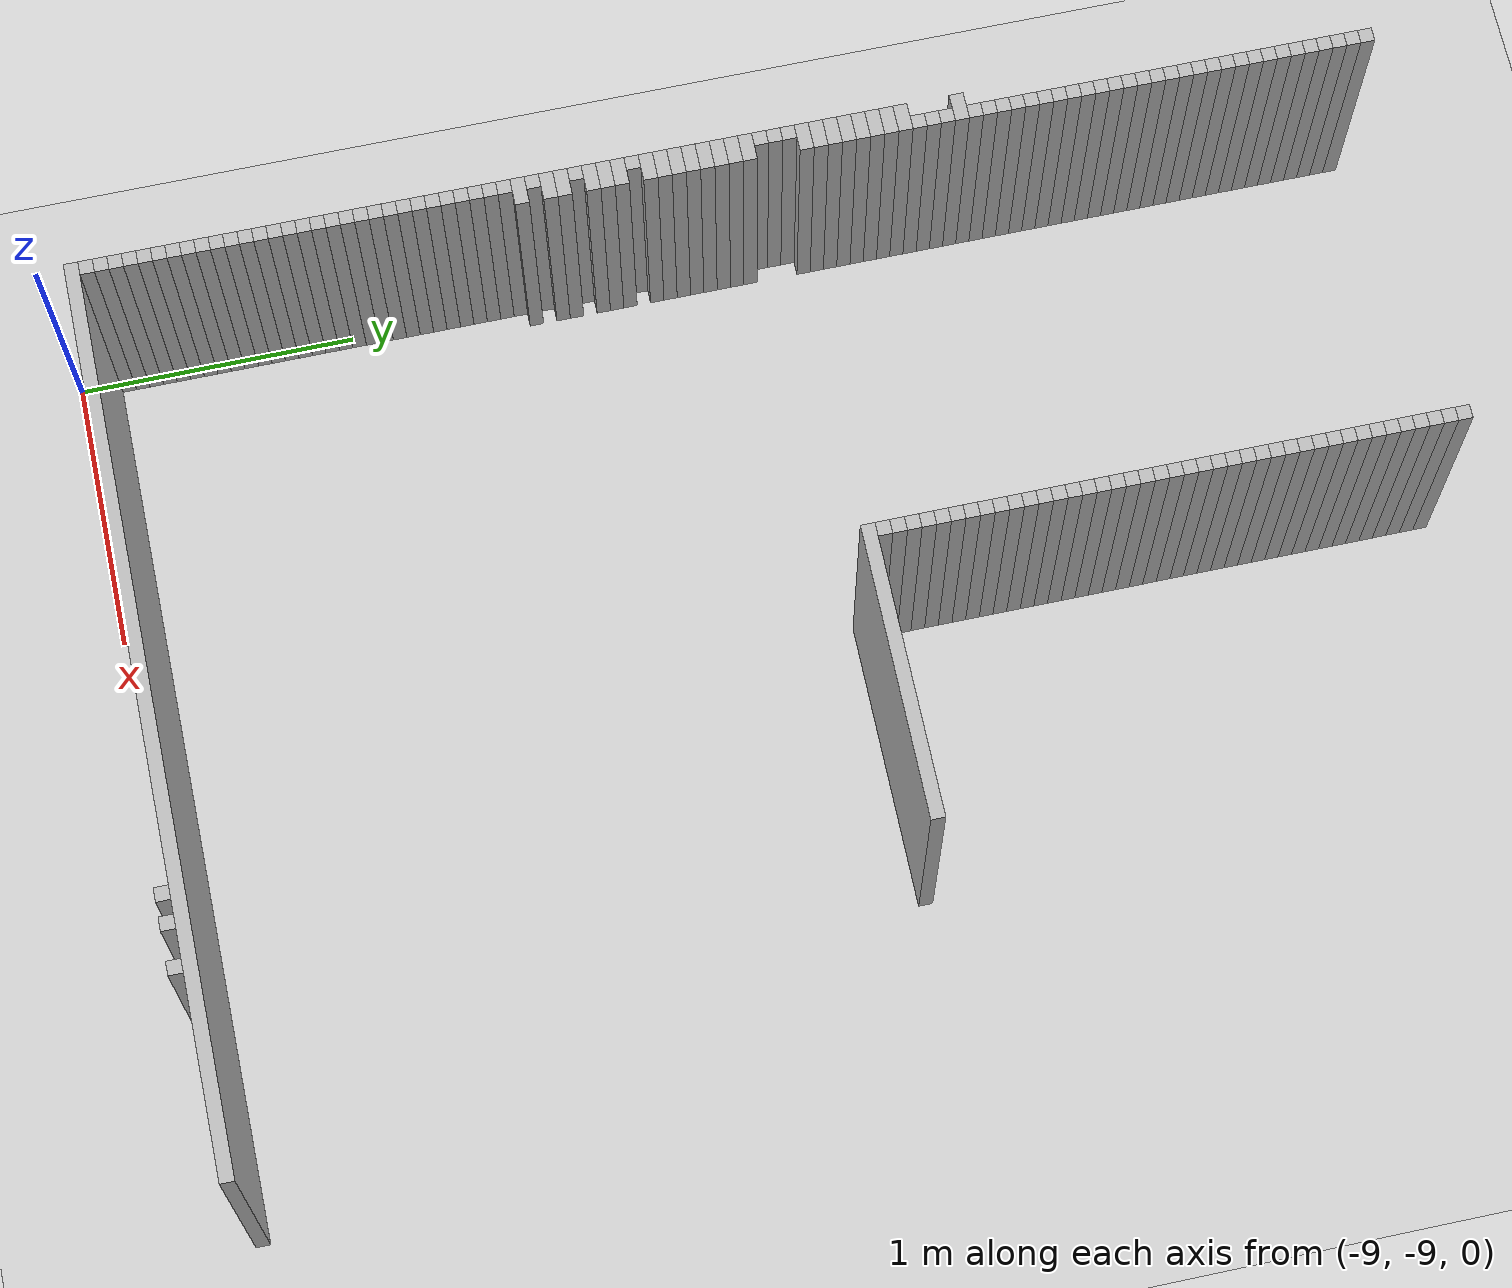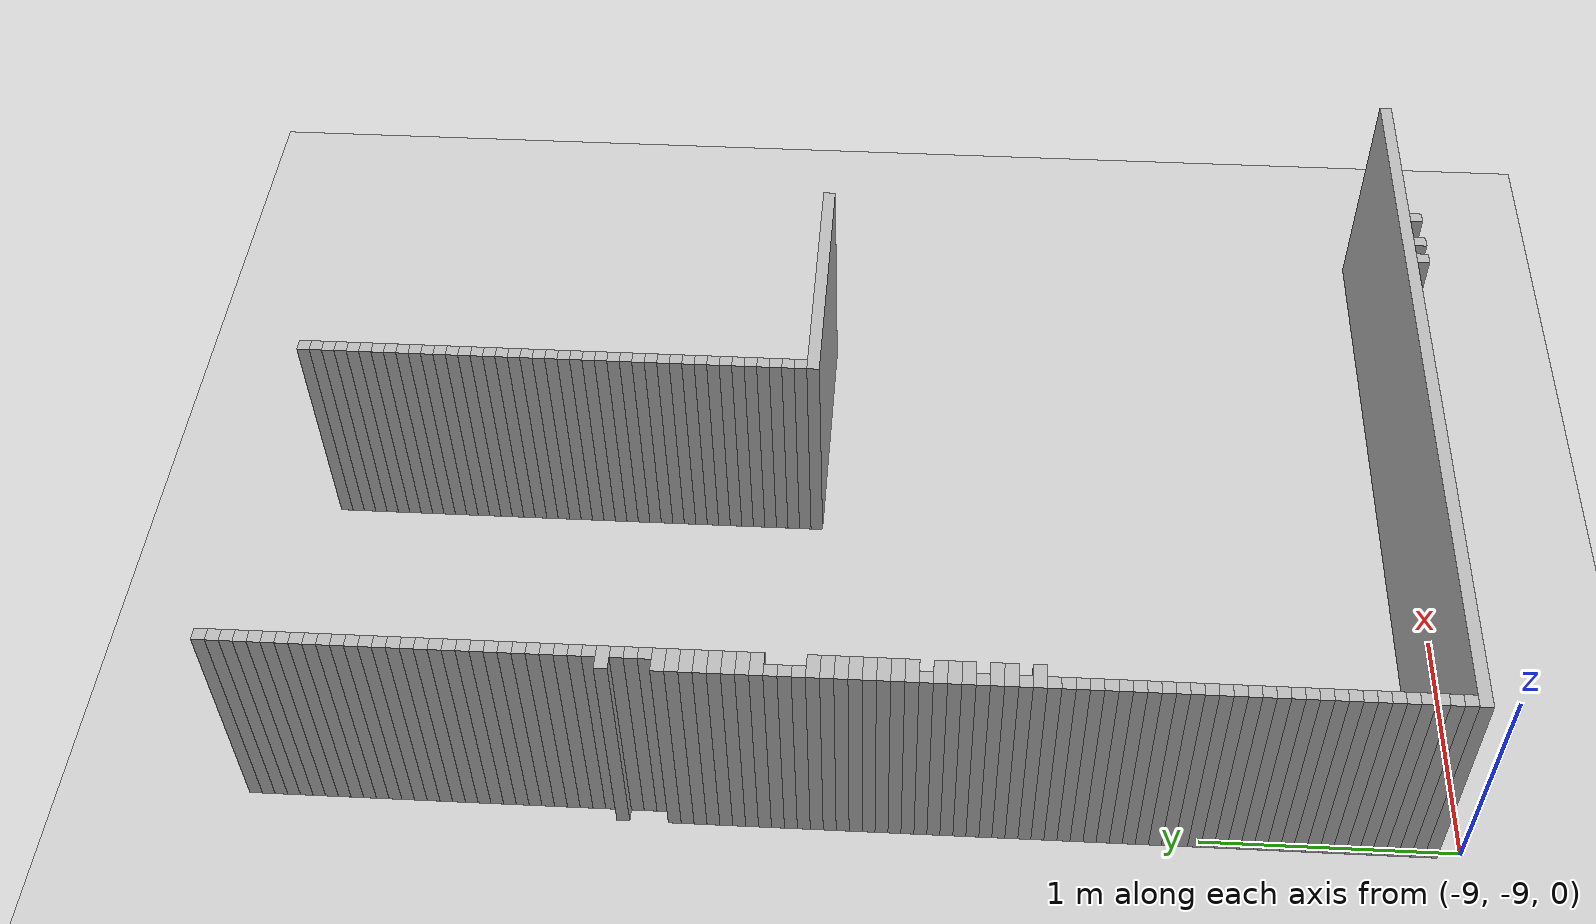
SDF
<sdf version="1.6">
 <world name="udh1_world">
  <include><uri>model://ground_plane</uri></include>
  <include><uri>model://sun</uri></include>
  <model name="wall_1954">
   <static>true</static>
   <pose>-8.945 -4.33 0.5 0 0 0</pose>
   <link name="link">
    <collision name="col"><geometry><box><size>0.05 0.05 1</size></box></geometry></collision>
    <visual name="vis"><geometry><box><size>0.05 0.05 1</size></box></geometry></visual>
   </link>
  </model>
  <model name="wall_1962">
   <static>true</static>
   <pose>-8.945 -4.380000000000001 0.5 0 0 0</pose>
   <link name="link">
    <collision name="col"><geometry><box><size>0.05 0.05 1</size></box></geometry></collision>
    <visual name="vis"><geometry><box><size>0.05 0.05 1</size></box></geometry></visual>
   </link>
  </model>
  <model name="wall_1963">
   <static>true</static>
   <pose>-7.494999999999999 -4.380000000000001 0.5 0 0 0</pose>
   <link name="link">
    <collision name="col"><geometry><box><size>0.05 0.05 1</size></box></geometry></collision>
    <visual name="vis"><geometry><box><size>0.05 0.05 1</size></box></geometry></visual>
   </link>
  </model>
  <model name="wall_1970">
   <static>true</static>
   <pose>-8.945 -4.430000000000001 0.5 0 0 0</pose>
   <link name="link">
    <collision name="col"><geometry><box><size>0.05 0.05 1</size></box></geometry></collision>
    <visual name="vis"><geometry><box><size>0.05 0.05 1</size></box></geometry></visual>
   </link>
  </model>
  <model name="wall_1971">
   <static>true</static>
   <pose>-7.494999999999999 -4.430000000000001 0.5 0 0 0</pose>
   <link name="link">
    <collision name="col"><geometry><box><size>0.05 0.05 1</size></box></geometry></collision>
    <visual name="vis"><geometry><box><size>0.05 0.05 1</size></box></geometry></visual>
   </link>
  </model>
  <model name="wall_1978">
   <static>true</static>
   <pose>-8.945 -4.48 0.5 0 0 0</pose>
   <link name="link">
    <collision name="col"><geometry><box><size>0.05 0.05 1</size></box></geometry></collision>
    <visual name="vis"><geometry><box><size>0.05 0.05 1</size></box></geometry></visual>
   </link>
  </model>
  <model name="wall_1979">
   <static>true</static>
   <pose>-7.494999999999999 -4.48 0.5 0 0 0</pose>
   <link name="link">
    <collision name="col"><geometry><box><size>0.05 0.05 1</size></box></geometry></collision>
    <visual name="vis"><geometry><box><size>0.05 0.05 1</size></box></geometry></visual>
   </link>
  </model>
  <model name="wall_1986">
   <static>true</static>
   <pose>-8.945 -4.53 0.5 0 0 0</pose>
   <link name="link">
    <collision name="col"><geometry><box><size>0.05 0.05 1</size></box></geometry></collision>
    <visual name="vis"><geometry><box><size>0.05 0.05 1</size></box></geometry></visual>
   </link>
  </model>
  <model name="wall_1987">
   <static>true</static>
   <pose>-7.494999999999999 -4.53 0.5 0 0 0</pose>
   <link name="link">
    <collision name="col"><geometry><box><size>0.05 0.05 1</size></box></geometry></collision>
    <visual name="vis"><geometry><box><size>0.05 0.05 1</size></box></geometry></visual>
   </link>
  </model>
  <model name="wall_1994">
   <static>true</static>
   <pose>-8.945 -4.580000000000001 0.5 0 0 0</pose>
   <link name="link">
    <collision name="col"><geometry><box><size>0.05 0.05 1</size></box></geometry></collision>
    <visual name="vis"><geometry><box><size>0.05 0.05 1</size></box></geometry></visual>
   </link>
  </model>
  <model name="wall_1995">
   <static>true</static>
   <pose>-7.494999999999999 -4.580000000000001 0.5 0 0 0</pose>
   <link name="link">
    <collision name="col"><geometry><box><size>0.05 0.05 1</size></box></geometry></collision>
    <visual name="vis"><geometry><box><size>0.05 0.05 1</size></box></geometry></visual>
   </link>
  </model>
  <model name="wall_2001">
   <static>true</static>
   <pose>-8.945 -4.630000000000001 0.5 0 0 0</pose>
   <link name="link">
    <collision name="col"><geometry><box><size>0.05 0.05 1</size></box></geometry></collision>
    <visual name="vis"><geometry><box><size>0.05 0.05 1</size></box></geometry></visual>
   </link>
  </model>
  <model name="wall_2002">
   <static>true</static>
   <pose>-7.494999999999999 -4.630000000000001 0.5 0 0 0</pose>
   <link name="link">
    <collision name="col"><geometry><box><size>0.05 0.05 1</size></box></geometry></collision>
    <visual name="vis"><geometry><box><size>0.05 0.05 1</size></box></geometry></visual>
   </link>
  </model>
  <model name="wall_2009">
   <static>true</static>
   <pose>-8.945 -4.680000000000001 0.5 0 0 0</pose>
   <link name="link">
    <collision name="col"><geometry><box><size>0.05 0.05 1</size></box></geometry></collision>
    <visual name="vis"><geometry><box><size>0.05 0.05 1</size></box></geometry></visual>
   </link>
  </model>
  <model name="wall_2010">
   <static>true</static>
   <pose>-7.494999999999999 -4.680000000000001 0.5 0 0 0</pose>
   <link name="link">
    <collision name="col"><geometry><box><size>0.05 0.05 1</size></box></geometry></collision>
    <visual name="vis"><geometry><box><size>0.05 0.05 1</size></box></geometry></visual>
   </link>
  </model>
  <model name="wall_2017">
   <static>true</static>
   <pose>-8.945 -4.73 0.5 0 0 0</pose>
   <link name="link">
    <collision name="col"><geometry><box><size>0.05 0.05 1</size></box></geometry></collision>
    <visual name="vis"><geometry><box><size>0.05 0.05 1</size></box></geometry></visual>
   </link>
  </model>
  <model name="wall_2018">
   <static>true</static>
   <pose>-7.494999999999999 -4.73 0.5 0 0 0</pose>
   <link name="link">
    <collision name="col"><geometry><box><size>0.05 0.05 1</size></box></geometry></collision>
    <visual name="vis"><geometry><box><size>0.05 0.05 1</size></box></geometry></visual>
   </link>
  </model>
  <model name="wall_2025">
   <static>true</static>
   <pose>-8.945 -4.78 0.5 0 0 0</pose>
   <link name="link">
    <collision name="col"><geometry><box><size>0.05 0.05 1</size></box></geometry></collision>
    <visual name="vis"><geometry><box><size>0.05 0.05 1</size></box></geometry></visual>
   </link>
  </model>
  <model name="wall_2026">
   <static>true</static>
   <pose>-7.494999999999999 -4.78 0.5 0 0 0</pose>
   <link name="link">
    <collision name="col"><geometry><box><size>0.05 0.05 1</size></box></geometry></collision>
    <visual name="vis"><geometry><box><size>0.05 0.05 1</size></box></geometry></visual>
   </link>
  </model>
  <model name="wall_2033">
   <static>true</static>
   <pose>-8.945 -4.830000000000001 0.5 0 0 0</pose>
   <link name="link">
    <collision name="col"><geometry><box><size>0.05 0.05 1</size></box></geometry></collision>
    <visual name="vis"><geometry><box><size>0.05 0.05 1</size></box></geometry></visual>
   </link>
  </model>
  <model name="wall_2034">
   <static>true</static>
   <pose>-7.494999999999999 -4.830000000000001 0.5 0 0 0</pose>
   <link name="link">
    <collision name="col"><geometry><box><size>0.05 0.05 1</size></box></geometry></collision>
    <visual name="vis"><geometry><box><size>0.05 0.05 1</size></box></geometry></visual>
   </link>
  </model>
  <model name="wall_2041">
   <static>true</static>
   <pose>-8.945 -4.880000000000001 0.5 0 0 0</pose>
   <link name="link">
    <collision name="col"><geometry><box><size>0.05 0.05 1</size></box></geometry></collision>
    <visual name="vis"><geometry><box><size>0.05 0.05 1</size></box></geometry></visual>
   </link>
  </model>
  <model name="wall_2042">
   <static>true</static>
   <pose>-7.494999999999999 -4.880000000000001 0.5 0 0 0</pose>
   <link name="link">
    <collision name="col"><geometry><box><size>0.05 0.05 1</size></box></geometry></collision>
    <visual name="vis"><geometry><box><size>0.05 0.05 1</size></box></geometry></visual>
   </link>
  </model>
  <model name="wall_2049">
   <static>true</static>
   <pose>-8.945 -4.930000000000001 0.5 0 0 0</pose>
   <link name="link">
    <collision name="col"><geometry><box><size>0.05 0.05 1</size></box></geometry></collision>
    <visual name="vis"><geometry><box><size>0.05 0.05 1</size></box></geometry></visual>
   </link>
  </model>
  <model name="wall_2050">
   <static>true</static>
   <pose>-7.494999999999999 -4.930000000000001 0.5 0 0 0</pose>
   <link name="link">
    <collision name="col"><geometry><box><size>0.05 0.05 1</size></box></geometry></collision>
    <visual name="vis"><geometry><box><size>0.05 0.05 1</size></box></geometry></visual>
   </link>
  </model>
  <model name="wall_2057">
   <static>true</static>
   <pose>-8.945 -4.98 0.5 0 0 0</pose>
   <link name="link">
    <collision name="col"><geometry><box><size>0.05 0.05 1</size></box></geometry></collision>
    <visual name="vis"><geometry><box><size>0.05 0.05 1</size></box></geometry></visual>
   </link>
  </model>
  <model name="wall_2058">
   <static>true</static>
   <pose>-7.494999999999999 -4.98 0.5 0 0 0</pose>
   <link name="link">
    <collision name="col"><geometry><box><size>0.05 0.05 1</size></box></geometry></collision>
    <visual name="vis"><geometry><box><size>0.05 0.05 1</size></box></geometry></visual>
   </link>
  </model>
  <model name="wall_2064">
   <static>true</static>
   <pose>-8.945 -5.03 0.5 0 0 0</pose>
   <link name="link">
    <collision name="col"><geometry><box><size>0.05 0.05 1</size></box></geometry></collision>
    <visual name="vis"><geometry><box><size>0.05 0.05 1</size></box></geometry></visual>
   </link>
  </model>
  <model name="wall_2065">
   <static>true</static>
   <pose>-7.494999999999999 -5.03 0.5 0 0 0</pose>
   <link name="link">
    <collision name="col"><geometry><box><size>0.05 0.05 1</size></box></geometry></collision>
    <visual name="vis"><geometry><box><size>0.05 0.05 1</size></box></geometry></visual>
   </link>
  </model>
  <model name="wall_2070">
   <static>true</static>
   <pose>-8.945 -5.080000000000001 0.5 0 0 0</pose>
   <link name="link">
    <collision name="col"><geometry><box><size>0.05 0.05 1</size></box></geometry></collision>
    <visual name="vis"><geometry><box><size>0.05 0.05 1</size></box></geometry></visual>
   </link>
  </model>
  <model name="wall_2071">
   <static>true</static>
   <pose>-7.494999999999999 -5.080000000000001 0.5 0 0 0</pose>
   <link name="link">
    <collision name="col"><geometry><box><size>0.05 0.05 1</size></box></geometry></collision>
    <visual name="vis"><geometry><box><size>0.05 0.05 1</size></box></geometry></visual>
   </link>
  </model>
  <model name="wall_2076">
   <static>true</static>
   <pose>-8.945 -5.130000000000001 0.5 0 0 0</pose>
   <link name="link">
    <collision name="col"><geometry><box><size>0.05 0.05 1</size></box></geometry></collision>
    <visual name="vis"><geometry><box><size>0.05 0.05 1</size></box></geometry></visual>
   </link>
  </model>
  <model name="wall_2077">
   <static>true</static>
   <pose>-7.494999999999999 -5.130000000000001 0.5 0 0 0</pose>
   <link name="link">
    <collision name="col"><geometry><box><size>0.05 0.05 1</size></box></geometry></collision>
    <visual name="vis"><geometry><box><size>0.05 0.05 1</size></box></geometry></visual>
   </link>
  </model>
  <model name="wall_2082">
   <static>true</static>
   <pose>-8.945 -5.180000000000001 0.5 0 0 0</pose>
   <link name="link">
    <collision name="col"><geometry><box><size>0.05 0.05 1</size></box></geometry></collision>
    <visual name="vis"><geometry><box><size>0.05 0.05 1</size></box></geometry></visual>
   </link>
  </model>
  <model name="wall_2083">
   <static>true</static>
   <pose>-7.494999999999999 -5.180000000000001 0.5 0 0 0</pose>
   <link name="link">
    <collision name="col"><geometry><box><size>0.05 0.05 1</size></box></geometry></collision>
    <visual name="vis"><geometry><box><size>0.05 0.05 1</size></box></geometry></visual>
   </link>
  </model>
  <model name="wall_2088">
   <static>true</static>
   <pose>-8.945 -5.23 0.5 0 0 0</pose>
   <link name="link">
    <collision name="col"><geometry><box><size>0.05 0.05 1</size></box></geometry></collision>
    <visual name="vis"><geometry><box><size>0.05 0.05 1</size></box></geometry></visual>
   </link>
  </model>
  <model name="wall_2089">
   <static>true</static>
   <pose>-7.494999999999999 -5.23 0.5 0 0 0</pose>
   <link name="link">
    <collision name="col"><geometry><box><size>0.05 0.05 1</size></box></geometry></collision>
    <visual name="vis"><geometry><box><size>0.05 0.05 1</size></box></geometry></visual>
   </link>
  </model>
  <model name="wall_2094">
   <static>true</static>
   <pose>-8.945 -5.280000000000001 0.5 0 0 0</pose>
   <link name="link">
    <collision name="col"><geometry><box><size>0.05 0.05 1</size></box></geometry></collision>
    <visual name="vis"><geometry><box><size>0.05 0.05 1</size></box></geometry></visual>
   </link>
  </model>
  <model name="wall_2095">
   <static>true</static>
   <pose>-7.494999999999999 -5.280000000000001 0.5 0 0 0</pose>
   <link name="link">
    <collision name="col"><geometry><box><size>0.05 0.05 1</size></box></geometry></collision>
    <visual name="vis"><geometry><box><size>0.05 0.05 1</size></box></geometry></visual>
   </link>
  </model>
  <model name="wall_2100">
   <static>true</static>
   <pose>-8.945 -5.33 0.5 0 0 0</pose>
   <link name="link">
    <collision name="col"><geometry><box><size>0.05 0.05 1</size></box></geometry></collision>
    <visual name="vis"><geometry><box><size>0.05 0.05 1</size></box></geometry></visual>
   </link>
  </model>
  <model name="wall_2101">
   <static>true</static>
   <pose>-7.494999999999999 -5.33 0.5 0 0 0</pose>
   <link name="link">
    <collision name="col"><geometry><box><size>0.05 0.05 1</size></box></geometry></collision>
    <visual name="vis"><geometry><box><size>0.05 0.05 1</size></box></geometry></visual>
   </link>
  </model>
  <model name="wall_2112">
   <static>true</static>
   <pose>-8.945 -5.380000000000001 0.5 0 0 0</pose>
   <link name="link">
    <collision name="col"><geometry><box><size>0.05 0.05 1</size></box></geometry></collision>
    <visual name="vis"><geometry><box><size>0.05 0.05 1</size></box></geometry></visual>
   </link>
  </model>
  <model name="wall_2113">
   <static>true</static>
   <pose>-7.494999999999999 -5.380000000000001 0.5 0 0 0</pose>
   <link name="link">
    <collision name="col"><geometry><box><size>0.05 0.05 1</size></box></geometry></collision>
    <visual name="vis"><geometry><box><size>0.05 0.05 1</size></box></geometry></visual>
   </link>
  </model>
  <model name="wall_2119">
   <static>true</static>
   <pose>-8.945 -5.430000000000001 0.5 0 0 0</pose>
   <link name="link">
    <collision name="col"><geometry><box><size>0.05 0.05 1</size></box></geometry></collision>
    <visual name="vis"><geometry><box><size>0.05 0.05 1</size></box></geometry></visual>
   </link>
  </model>
  <model name="wall_2120">
   <static>true</static>
   <pose>-7.494999999999999 -5.430000000000001 0.5 0 0 0</pose>
   <link name="link">
    <collision name="col"><geometry><box><size>0.05 0.05 1</size></box></geometry></collision>
    <visual name="vis"><geometry><box><size>0.05 0.05 1</size></box></geometry></visual>
   </link>
  </model>
  <model name="wall_2127">
   <static>true</static>
   <pose>-8.945 -5.48 0.5 0 0 0</pose>
   <link name="link">
    <collision name="col"><geometry><box><size>0.05 0.05 1</size></box></geometry></collision>
    <visual name="vis"><geometry><box><size>0.05 0.05 1</size></box></geometry></visual>
   </link>
  </model>
  <model name="wall_2128">
   <static>true</static>
   <pose>-7.494999999999999 -5.48 0.5 0 0 0</pose>
   <link name="link">
    <collision name="col"><geometry><box><size>0.05 0.05 1</size></box></geometry></collision>
    <visual name="vis"><geometry><box><size>0.05 0.05 1</size></box></geometry></visual>
   </link>
  </model>
  <model name="wall_2138">
   <static>true</static>
   <pose>-8.945 -5.530000000000001 0.5 0 0 0</pose>
   <link name="link">
    <collision name="col"><geometry><box><size>0.05 0.05 1</size></box></geometry></collision>
    <visual name="vis"><geometry><box><size>0.05 0.05 1</size></box></geometry></visual>
   </link>
  </model>
  <model name="wall_2139">
   <static>true</static>
   <pose>-7.494999999999999 -5.530000000000001 0.5 0 0 0</pose>
   <link name="link">
    <collision name="col"><geometry><box><size>0.05 0.05 1</size></box></geometry></collision>
    <visual name="vis"><geometry><box><size>0.05 0.05 1</size></box></geometry></visual>
   </link>
  </model>
  <model name="wall_2146">
   <static>true</static>
   <pose>-8.945 -5.58 0.5 0 0 0</pose>
   <link name="link">
    <collision name="col"><geometry><box><size>0.05 0.05 1</size></box></geometry></collision>
    <visual name="vis"><geometry><box><size>0.05 0.05 1</size></box></geometry></visual>
   </link>
  </model>
  <model name="wall_2147">
   <static>true</static>
   <pose>-7.494999999999999 -5.58 0.5 0 0 0</pose>
   <link name="link">
    <collision name="col"><geometry><box><size>0.05 0.05 1</size></box></geometry></collision>
    <visual name="vis"><geometry><box><size>0.05 0.05 1</size></box></geometry></visual>
   </link>
  </model>
  <model name="wall_2154">
   <static>true</static>
   <pose>-8.945 -5.630000000000001 0.5 0 0 0</pose>
   <link name="link">
    <collision name="col"><geometry><box><size>0.05 0.05 1</size></box></geometry></collision>
    <visual name="vis"><geometry><box><size>0.05 0.05 1</size></box></geometry></visual>
   </link>
  </model>
  <model name="wall_2155">
   <static>true</static>
   <pose>-7.494999999999999 -5.630000000000001 0.5 0 0 0</pose>
   <link name="link">
    <collision name="col"><geometry><box><size>0.05 0.05 1</size></box></geometry></collision>
    <visual name="vis"><geometry><box><size>0.05 0.05 1</size></box></geometry></visual>
   </link>
  </model>
  <model name="wall_2162">
   <static>true</static>
   <pose>-8.945 -5.680000000000001 0.5 0 0 0</pose>
   <link name="link">
    <collision name="col"><geometry><box><size>0.05 0.05 1</size></box></geometry></collision>
    <visual name="vis"><geometry><box><size>0.05 0.05 1</size></box></geometry></visual>
   </link>
  </model>
  <model name="wall_2163">
   <static>true</static>
   <pose>-7.494999999999999 -5.680000000000001 0.5 0 0 0</pose>
   <link name="link">
    <collision name="col"><geometry><box><size>0.05 0.05 1</size></box></geometry></collision>
    <visual name="vis"><geometry><box><size>0.05 0.05 1</size></box></geometry></visual>
   </link>
  </model>
  <model name="wall_2170">
   <static>true</static>
   <pose>-8.945 -5.73 0.5 0 0 0</pose>
   <link name="link">
    <collision name="col"><geometry><box><size>0.05 0.05 1</size></box></geometry></collision>
    <visual name="vis"><geometry><box><size>0.05 0.05 1</size></box></geometry></visual>
   </link>
  </model>
  <model name="wall_2171">
   <static>true</static>
   <pose>-7.494999999999999 -5.73 0.5 0 0 0</pose>
   <link name="link">
    <collision name="col"><geometry><box><size>0.05 0.05 1</size></box></geometry></collision>
    <visual name="vis"><geometry><box><size>0.05 0.05 1</size></box></geometry></visual>
   </link>
  </model>
  <model name="wall_2178">
   <static>true</static>
   <pose>-8.969999999999999 -5.780000000000001 0.5 0 0 0</pose>
   <link name="link">
    <collision name="col"><geometry><box><size>0.1 0.05 1</size></box></geometry></collision>
    <visual name="vis"><geometry><box><size>0.1 0.05 1</size></box></geometry></visual>
   </link>
  </model>
  <model name="wall_2179">
   <static>true</static>
   <pose>-7.494999999999999 -5.780000000000001 0.5 0 0 0</pose>
   <link name="link">
    <collision name="col"><geometry><box><size>0.05 0.05 1</size></box></geometry></collision>
    <visual name="vis"><geometry><box><size>0.05 0.05 1</size></box></geometry></visual>
   </link>
  </model>
  <model name="wall_2186">
   <static>true</static>
   <pose>-8.945 -5.83 0.5 0 0 0</pose>
   <link name="link">
    <collision name="col"><geometry><box><size>0.05 0.05 1</size></box></geometry></collision>
    <visual name="vis"><geometry><box><size>0.05 0.05 1</size></box></geometry></visual>
   </link>
  </model>
  <model name="wall_2187">
   <static>true</static>
   <pose>-7.494999999999999 -5.83 0.5 0 0 0</pose>
   <link name="link">
    <collision name="col"><geometry><box><size>0.05 0.05 1</size></box></geometry></collision>
    <visual name="vis"><geometry><box><size>0.05 0.05 1</size></box></geometry></visual>
   </link>
  </model>
  <model name="wall_2194">
   <static>true</static>
   <pose>-8.945 -5.880000000000001 0.5 0 0 0</pose>
   <link name="link">
    <collision name="col"><geometry><box><size>0.05 0.05 1</size></box></geometry></collision>
    <visual name="vis"><geometry><box><size>0.05 0.05 1</size></box></geometry></visual>
   </link>
  </model>
  <model name="wall_2195">
   <static>true</static>
   <pose>-7.494999999999999 -5.880000000000001 0.5 0 0 0</pose>
   <link name="link">
    <collision name="col"><geometry><box><size>0.05 0.05 1</size></box></geometry></collision>
    <visual name="vis"><geometry><box><size>0.05 0.05 1</size></box></geometry></visual>
   </link>
  </model>
  <model name="wall_2202">
   <static>true</static>
   <pose>-8.945 -5.930000000000001 0.5 0 0 0</pose>
   <link name="link">
    <collision name="col"><geometry><box><size>0.05 0.05 1</size></box></geometry></collision>
    <visual name="vis"><geometry><box><size>0.05 0.05 1</size></box></geometry></visual>
   </link>
  </model>
  <model name="wall_2203">
   <static>true</static>
   <pose>-7.494999999999999 -5.930000000000001 0.5 0 0 0</pose>
   <link name="link">
    <collision name="col"><geometry><box><size>0.05 0.05 1</size></box></geometry></collision>
    <visual name="vis"><geometry><box><size>0.05 0.05 1</size></box></geometry></visual>
   </link>
  </model>
  <model name="wall_2210">
   <static>true</static>
   <pose>-8.969999999999999 -5.98 0.5 0 0 0</pose>
   <link name="link">
    <collision name="col"><geometry><box><size>0.1 0.05 1</size></box></geometry></collision>
    <visual name="vis"><geometry><box><size>0.1 0.05 1</size></box></geometry></visual>
   </link>
  </model>
  <model name="wall_2211">
   <static>true</static>
   <pose>-7.494999999999999 -5.98 0.5 0 0 0</pose>
   <link name="link">
    <collision name="col"><geometry><box><size>0.05 0.05 1</size></box></geometry></collision>
    <visual name="vis"><geometry><box><size>0.05 0.05 1</size></box></geometry></visual>
   </link>
  </model>
  <model name="wall_2218">
   <static>true</static>
   <pose>-8.969999999999999 -6.030000000000001 0.5 0 0 0</pose>
   <link name="link">
    <collision name="col"><geometry><box><size>0.1 0.05 1</size></box></geometry></collision>
    <visual name="vis"><geometry><box><size>0.1 0.05 1</size></box></geometry></visual>
   </link>
  </model>
  <model name="wall_2219">
   <static>true</static>
   <pose>-7.494999999999999 -6.030000000000001 0.5 0 0 0</pose>
   <link name="link">
    <collision name="col"><geometry><box><size>0.05 0.05 1</size></box></geometry></collision>
    <visual name="vis"><geometry><box><size>0.05 0.05 1</size></box></geometry></visual>
   </link>
  </model>
  <model name="wall_2226">
   <static>true</static>
   <pose>-8.969999999999999 -6.08 0.5 0 0 0</pose>
   <link name="link">
    <collision name="col"><geometry><box><size>0.1 0.05 1</size></box></geometry></collision>
    <visual name="vis"><geometry><box><size>0.1 0.05 1</size></box></geometry></visual>
   </link>
  </model>
  <model name="wall_2227">
   <static>true</static>
   <pose>-7.494999999999999 -6.08 0.5 0 0 0</pose>
   <link name="link">
    <collision name="col"><geometry><box><size>0.05 0.05 1</size></box></geometry></collision>
    <visual name="vis"><geometry><box><size>0.05 0.05 1</size></box></geometry></visual>
   </link>
  </model>
  <model name="wall_2234">
   <static>true</static>
   <pose>-8.969999999999999 -6.130000000000001 0.5 0 0 0</pose>
   <link name="link">
    <collision name="col"><geometry><box><size>0.1 0.05 1</size></box></geometry></collision>
    <visual name="vis"><geometry><box><size>0.1 0.05 1</size></box></geometry></visual>
   </link>
  </model>
  <model name="wall_2235">
   <static>true</static>
   <pose>-7.494999999999999 -6.130000000000001 0.5 0 0 0</pose>
   <link name="link">
    <collision name="col"><geometry><box><size>0.05 0.05 1</size></box></geometry></collision>
    <visual name="vis"><geometry><box><size>0.05 0.05 1</size></box></geometry></visual>
   </link>
  </model>
  <model name="wall_2242">
   <static>true</static>
   <pose>-8.969999999999999 -6.180000000000001 0.5 0 0 0</pose>
   <link name="link">
    <collision name="col"><geometry><box><size>0.1 0.05 1</size></box></geometry></collision>
    <visual name="vis"><geometry><box><size>0.1 0.05 1</size></box></geometry></visual>
   </link>
  </model>
  <model name="wall_2243">
   <static>true</static>
   <pose>-7.494999999999999 -6.180000000000001 0.5 0 0 0</pose>
   <link name="link">
    <collision name="col"><geometry><box><size>0.05 0.05 1</size></box></geometry></collision>
    <visual name="vis"><geometry><box><size>0.05 0.05 1</size></box></geometry></visual>
   </link>
  </model>
  <model name="wall_2250">
   <static>true</static>
   <pose>-8.969999999999999 -6.23 0.5 0 0 0</pose>
   <link name="link">
    <collision name="col"><geometry><box><size>0.1 0.05 1</size></box></geometry></collision>
    <visual name="vis"><geometry><box><size>0.1 0.05 1</size></box></geometry></visual>
   </link>
  </model>
  <model name="wall_2251">
   <static>true</static>
   <pose>-7.494999999999999 -6.23 0.5 0 0 0</pose>
   <link name="link">
    <collision name="col"><geometry><box><size>0.05 0.05 1</size></box></geometry></collision>
    <visual name="vis"><geometry><box><size>0.05 0.05 1</size></box></geometry></visual>
   </link>
  </model>
  <model name="wall_2258">
   <static>true</static>
   <pose>-8.969999999999999 -6.280000000000001 0.5 0 0 0</pose>
   <link name="link">
    <collision name="col"><geometry><box><size>0.1 0.05 1</size></box></geometry></collision>
    <visual name="vis"><geometry><box><size>0.1 0.05 1</size></box></geometry></visual>
   </link>
  </model>
  <model name="wall_2259">
   <static>true</static>
   <pose>-7.494999999999999 -6.280000000000001 0.5 0 0 0</pose>
   <link name="link">
    <collision name="col"><geometry><box><size>0.05 0.05 1</size></box></geometry></collision>
    <visual name="vis"><geometry><box><size>0.05 0.05 1</size></box></geometry></visual>
   </link>
  </model>
  <model name="wall_2266">
   <static>true</static>
   <pose>-8.969999999999999 -6.33 0.5 0 0 0</pose>
   <link name="link">
    <collision name="col"><geometry><box><size>0.1 0.05 1</size></box></geometry></collision>
    <visual name="vis"><geometry><box><size>0.1 0.05 1</size></box></geometry></visual>
   </link>
  </model>
  <model name="wall_2267">
   <static>true</static>
   <pose>-7.494999999999999 -6.33 0.5 0 0 0</pose>
   <link name="link">
    <collision name="col"><geometry><box><size>0.05 0.05 1</size></box></geometry></collision>
    <visual name="vis"><geometry><box><size>0.05 0.05 1</size></box></geometry></visual>
   </link>
  </model>
  <model name="wall_2274">
   <static>true</static>
   <pose>-8.995 -6.380000000000001 0.5 0 0 0</pose>
   <link name="link">
    <collision name="col"><geometry><box><size>0.05 0.05 1</size></box></geometry></collision>
    <visual name="vis"><geometry><box><size>0.05 0.05 1</size></box></geometry></visual>
   </link>
  </model>
  <model name="wall_2275">
   <static>true</static>
   <pose>-7.494999999999999 -6.380000000000001 0.5 0 0 0</pose>
   <link name="link">
    <collision name="col"><geometry><box><size>0.05 0.05 1</size></box></geometry></collision>
    <visual name="vis"><geometry><box><size>0.05 0.05 1</size></box></geometry></visual>
   </link>
  </model>
  <model name="wall_2282">
   <static>true</static>
   <pose>-8.995 -6.430000000000001 0.5 0 0 0</pose>
   <link name="link">
    <collision name="col"><geometry><box><size>0.05 0.05 1</size></box></geometry></collision>
    <visual name="vis"><geometry><box><size>0.05 0.05 1</size></box></geometry></visual>
   </link>
  </model>
  <model name="wall_2283">
   <static>true</static>
   <pose>-6.994999999999999 -6.430000000000001 0.5 0 0 0</pose>
   <link name="link">
    <collision name="col"><geometry><box><size>1.05 0.05 1</size></box></geometry></collision>
    <visual name="vis"><geometry><box><size>1.05 0.05 1</size></box></geometry></visual>
   </link>
  </model>
  <model name="wall_2289">
   <static>true</static>
   <pose>-8.995 -6.48 0.5 0 0 0</pose>
   <link name="link">
    <collision name="col"><geometry><box><size>0.05 0.05 1</size></box></geometry></collision>
    <visual name="vis"><geometry><box><size>0.05 0.05 1</size></box></geometry></visual>
   </link>
  </model>
  <model name="wall_2295">
   <static>true</static>
   <pose>-8.969999999999999 -6.530000000000001 0.5 0 0 0</pose>
   <link name="link">
    <collision name="col"><geometry><box><size>0.1 0.05 1</size></box></geometry></collision>
    <visual name="vis"><geometry><box><size>0.1 0.05 1</size></box></geometry></visual>
   </link>
  </model>
  <model name="wall_2301">
   <static>true</static>
   <pose>-8.969999999999999 -6.58 0.5 0 0 0</pose>
   <link name="link">
    <collision name="col"><geometry><box><size>0.1 0.05 1</size></box></geometry></collision>
    <visual name="vis"><geometry><box><size>0.1 0.05 1</size></box></geometry></visual>
   </link>
  </model>
  <model name="wall_2306">
   <static>true</static>
   <pose>-8.969999999999999 -6.630000000000001 0.5 0 0 0</pose>
   <link name="link">
    <collision name="col"><geometry><box><size>0.1 0.05 1</size></box></geometry></collision>
    <visual name="vis"><geometry><box><size>0.1 0.05 1</size></box></geometry></visual>
   </link>
  </model>
  <model name="wall_2312">
   <static>true</static>
   <pose>-8.969999999999999 -6.680000000000001 0.5 0 0 0</pose>
   <link name="link">
    <collision name="col"><geometry><box><size>0.1 0.05 1</size></box></geometry></collision>
    <visual name="vis"><geometry><box><size>0.1 0.05 1</size></box></geometry></visual>
   </link>
  </model>
  <model name="wall_2316">
   <static>true</static>
   <pose>-8.969999999999999 -6.73 0.5 0 0 0</pose>
   <link name="link">
    <collision name="col"><geometry><box><size>0.1 0.05 1</size></box></geometry></collision>
    <visual name="vis"><geometry><box><size>0.1 0.05 1</size></box></geometry></visual>
   </link>
  </model>
  <model name="wall_2320">
   <static>true</static>
   <pose>-8.969999999999999 -6.780000000000001 0.5 0 0 0</pose>
   <link name="link">
    <collision name="col"><geometry><box><size>0.1 0.05 1</size></box></geometry></collision>
    <visual name="vis"><geometry><box><size>0.1 0.05 1</size></box></geometry></visual>
   </link>
  </model>
  <model name="wall_2324">
   <static>true</static>
   <pose>-8.969999999999999 -6.83 0.5 0 0 0</pose>
   <link name="link">
    <collision name="col"><geometry><box><size>0.1 0.05 1</size></box></geometry></collision>
    <visual name="vis"><geometry><box><size>0.1 0.05 1</size></box></geometry></visual>
   </link>
  </model>
  <model name="wall_2328">
   <static>true</static>
   <pose>-8.969999999999999 -6.880000000000001 0.5 0 0 0</pose>
   <link name="link">
    <collision name="col"><geometry><box><size>0.1 0.05 1</size></box></geometry></collision>
    <visual name="vis"><geometry><box><size>0.1 0.05 1</size></box></geometry></visual>
   </link>
  </model>
  <model name="wall_2334">
   <static>true</static>
   <pose>-8.995 -6.930000000000001 0.5 0 0 0</pose>
   <link name="link">
    <collision name="col"><geometry><box><size>0.05 0.05 1</size></box></geometry></collision>
    <visual name="vis"><geometry><box><size>0.05 0.05 1</size></box></geometry></visual>
   </link>
  </model>
  <model name="wall_2339">
   <static>true</static>
   <pose>-8.969999999999999 -6.98 0.5 0 0 0</pose>
   <link name="link">
    <collision name="col"><geometry><box><size>0.1 0.05 1</size></box></geometry></collision>
    <visual name="vis"><geometry><box><size>0.1 0.05 1</size></box></geometry></visual>
   </link>
  </model>
  <model name="wall_2345">
   <static>true</static>
   <pose>-8.969999999999999 -7.030000000000001 0.5 0 0 0</pose>
   <link name="link">
    <collision name="col"><geometry><box><size>0.1 0.05 1</size></box></geometry></collision>
    <visual name="vis"><geometry><box><size>0.1 0.05 1</size></box></geometry></visual>
   </link>
  </model>
  <model name="wall_2351">
   <static>true</static>
   <pose>-8.969999999999999 -7.08 0.5 0 0 0</pose>
   <link name="link">
    <collision name="col"><geometry><box><size>0.1 0.05 1</size></box></geometry></collision>
    <visual name="vis"><geometry><box><size>0.1 0.05 1</size></box></geometry></visual>
   </link>
  </model>
  <model name="wall_2357">
   <static>true</static>
   <pose>-8.995 -7.130000000000001 0.5 0 0 0</pose>
   <link name="link">
    <collision name="col"><geometry><box><size>0.05 0.05 1</size></box></geometry></collision>
    <visual name="vis"><geometry><box><size>0.05 0.05 1</size></box></geometry></visual>
   </link>
  </model>
  <model name="wall_2363">
   <static>true</static>
   <pose>-8.969999999999999 -7.180000000000001 0.5 0 0 0</pose>
   <link name="link">
    <collision name="col"><geometry><box><size>0.1 0.05 1</size></box></geometry></collision>
    <visual name="vis"><geometry><box><size>0.1 0.05 1</size></box></geometry></visual>
   </link>
  </model>
  <model name="wall_2369">
   <static>true</static>
   <pose>-8.969999999999999 -7.23 0.5 0 0 0</pose>
   <link name="link">
    <collision name="col"><geometry><box><size>0.1 0.05 1</size></box></geometry></collision>
    <visual name="vis"><geometry><box><size>0.1 0.05 1</size></box></geometry></visual>
   </link>
  </model>
  <model name="wall_2375">
   <static>true</static>
   <pose>-8.995 -7.280000000000001 0.5 0 0 0</pose>
   <link name="link">
    <collision name="col"><geometry><box><size>0.05 0.05 1</size></box></geometry></collision>
    <visual name="vis"><geometry><box><size>0.05 0.05 1</size></box></geometry></visual>
   </link>
  </model>
  <model name="wall_2381">
   <static>true</static>
   <pose>-8.969999999999999 -7.330000000000001 0.5 0 0 0</pose>
   <link name="link">
    <collision name="col"><geometry><box><size>0.1 0.05 1</size></box></geometry></collision>
    <visual name="vis"><geometry><box><size>0.1 0.05 1</size></box></geometry></visual>
   </link>
  </model>
  <model name="wall_2387">
   <static>true</static>
   <pose>-8.995 -7.380000000000001 0.5 0 0 0</pose>
   <link name="link">
    <collision name="col"><geometry><box><size>0.05 0.05 1</size></box></geometry></collision>
    <visual name="vis"><geometry><box><size>0.05 0.05 1</size></box></geometry></visual>
   </link>
  </model>
  <model name="wall_2393">
   <static>true</static>
   <pose>-8.995 -7.430000000000001 0.5 0 0 0</pose>
   <link name="link">
    <collision name="col"><geometry><box><size>0.05 0.05 1</size></box></geometry></collision>
    <visual name="vis"><geometry><box><size>0.05 0.05 1</size></box></geometry></visual>
   </link>
  </model>
  <model name="wall_2399">
   <static>true</static>
   <pose>-8.995 -7.48 0.5 0 0 0</pose>
   <link name="link">
    <collision name="col"><geometry><box><size>0.05 0.05 1</size></box></geometry></collision>
    <visual name="vis"><geometry><box><size>0.05 0.05 1</size></box></geometry></visual>
   </link>
  </model>
  <model name="wall_2405">
   <static>true</static>
   <pose>-8.995 -7.530000000000001 0.5 0 0 0</pose>
   <link name="link">
    <collision name="col"><geometry><box><size>0.05 0.05 1</size></box></geometry></collision>
    <visual name="vis"><geometry><box><size>0.05 0.05 1</size></box></geometry></visual>
   </link>
  </model>
  <model name="wall_2411">
   <static>true</static>
   <pose>-8.995 -7.580000000000001 0.5 0 0 0</pose>
   <link name="link">
    <collision name="col"><geometry><box><size>0.05 0.05 1</size></box></geometry></collision>
    <visual name="vis"><geometry><box><size>0.05 0.05 1</size></box></geometry></visual>
   </link>
  </model>
  <model name="wall_2417">
   <static>true</static>
   <pose>-8.995 -7.630000000000001 0.5 0 0 0</pose>
   <link name="link">
    <collision name="col"><geometry><box><size>0.05 0.05 1</size></box></geometry></collision>
    <visual name="vis"><geometry><box><size>0.05 0.05 1</size></box></geometry></visual>
   </link>
  </model>
  <model name="wall_2423">
   <static>true</static>
   <pose>-8.995 -7.680000000000001 0.5 0 0 0</pose>
   <link name="link">
    <collision name="col"><geometry><box><size>0.05 0.05 1</size></box></geometry></collision>
    <visual name="vis"><geometry><box><size>0.05 0.05 1</size></box></geometry></visual>
   </link>
  </model>
  <model name="wall_2429">
   <static>true</static>
   <pose>-8.995 -7.73 0.5 0 0 0</pose>
   <link name="link">
    <collision name="col"><geometry><box><size>0.05 0.05 1</size></box></geometry></collision>
    <visual name="vis"><geometry><box><size>0.05 0.05 1</size></box></geometry></visual>
   </link>
  </model>
  <model name="wall_2435">
   <static>true</static>
   <pose>-8.995 -7.780000000000001 0.5 0 0 0</pose>
   <link name="link">
    <collision name="col"><geometry><box><size>0.05 0.05 1</size></box></geometry></collision>
    <visual name="vis"><geometry><box><size>0.05 0.05 1</size></box></geometry></visual>
   </link>
  </model>
  <model name="wall_2441">
   <static>true</static>
   <pose>-8.995 -7.830000000000001 0.5 0 0 0</pose>
   <link name="link">
    <collision name="col"><geometry><box><size>0.05 0.05 1</size></box></geometry></collision>
    <visual name="vis"><geometry><box><size>0.05 0.05 1</size></box></geometry></visual>
   </link>
  </model>
  <model name="wall_2447">
   <static>true</static>
   <pose>-8.995 -7.880000000000001 0.5 0 0 0</pose>
   <link name="link">
    <collision name="col"><geometry><box><size>0.05 0.05 1</size></box></geometry></collision>
    <visual name="vis"><geometry><box><size>0.05 0.05 1</size></box></geometry></visual>
   </link>
  </model>
  <model name="wall_2453">
   <static>true</static>
   <pose>-8.995 -7.930000000000001 0.5 0 0 0</pose>
   <link name="link">
    <collision name="col"><geometry><box><size>0.05 0.05 1</size></box></geometry></collision>
    <visual name="vis"><geometry><box><size>0.05 0.05 1</size></box></geometry></visual>
   </link>
  </model>
  <model name="wall_2458">
   <static>true</static>
   <pose>-8.995 -7.98 0.5 0 0 0</pose>
   <link name="link">
    <collision name="col"><geometry><box><size>0.05 0.05 1</size></box></geometry></collision>
    <visual name="vis"><geometry><box><size>0.05 0.05 1</size></box></geometry></visual>
   </link>
  </model>
  <model name="wall_2463">
   <static>true</static>
   <pose>-8.995 -8.030000000000001 0.5 0 0 0</pose>
   <link name="link">
    <collision name="col"><geometry><box><size>0.05 0.05 1</size></box></geometry></collision>
    <visual name="vis"><geometry><box><size>0.05 0.05 1</size></box></geometry></visual>
   </link>
  </model>
  <model name="wall_2467">
   <static>true</static>
   <pose>-8.995 -8.08 0.5 0 0 0</pose>
   <link name="link">
    <collision name="col"><geometry><box><size>0.05 0.05 1</size></box></geometry></collision>
    <visual name="vis"><geometry><box><size>0.05 0.05 1</size></box></geometry></visual>
   </link>
  </model>
  <model name="wall_2471">
   <static>true</static>
   <pose>-8.995 -8.13 0.5 0 0 0</pose>
   <link name="link">
    <collision name="col"><geometry><box><size>0.05 0.05 1</size></box></geometry></collision>
    <visual name="vis"><geometry><box><size>0.05 0.05 1</size></box></geometry></visual>
   </link>
  </model>
  <model name="wall_2475">
   <static>true</static>
   <pose>-8.995 -8.180000000000001 0.5 0 0 0</pose>
   <link name="link">
    <collision name="col"><geometry><box><size>0.05 0.05 1</size></box></geometry></collision>
    <visual name="vis"><geometry><box><size>0.05 0.05 1</size></box></geometry></visual>
   </link>
  </model>
  <model name="wall_2479">
   <static>true</static>
   <pose>-8.995 -8.23 0.5 0 0 0</pose>
   <link name="link">
    <collision name="col"><geometry><box><size>0.05 0.05 1</size></box></geometry></collision>
    <visual name="vis"><geometry><box><size>0.05 0.05 1</size></box></geometry></visual>
   </link>
  </model>
  <model name="wall_2483">
   <static>true</static>
   <pose>-8.995 -8.280000000000001 0.5 0 0 0</pose>
   <link name="link">
    <collision name="col"><geometry><box><size>0.05 0.05 1</size></box></geometry></collision>
    <visual name="vis"><geometry><box><size>0.05 0.05 1</size></box></geometry></visual>
   </link>
  </model>
  <model name="wall_2487">
   <static>true</static>
   <pose>-8.995 -8.33 0.5 0 0 0</pose>
   <link name="link">
    <collision name="col"><geometry><box><size>0.05 0.05 1</size></box></geometry></collision>
    <visual name="vis"><geometry><box><size>0.05 0.05 1</size></box></geometry></visual>
   </link>
  </model>
  <model name="wall_2491">
   <static>true</static>
   <pose>-8.995 -8.38 0.5 0 0 0</pose>
   <link name="link">
    <collision name="col"><geometry><box><size>0.05 0.05 1</size></box></geometry></collision>
    <visual name="vis"><geometry><box><size>0.05 0.05 1</size></box></geometry></visual>
   </link>
  </model>
  <model name="wall_2495">
   <static>true</static>
   <pose>-8.995 -8.430000000000001 0.5 0 0 0</pose>
   <link name="link">
    <collision name="col"><geometry><box><size>0.05 0.05 1</size></box></geometry></collision>
    <visual name="vis"><geometry><box><size>0.05 0.05 1</size></box></geometry></visual>
   </link>
  </model>
  <model name="wall_2499">
   <static>true</static>
   <pose>-8.995 -8.48 0.5 0 0 0</pose>
   <link name="link">
    <collision name="col"><geometry><box><size>0.05 0.05 1</size></box></geometry></collision>
    <visual name="vis"><geometry><box><size>0.05 0.05 1</size></box></geometry></visual>
   </link>
  </model>
  <model name="wall_2503">
   <static>true</static>
   <pose>-8.995 -8.530000000000001 0.5 0 0 0</pose>
   <link name="link">
    <collision name="col"><geometry><box><size>0.05 0.05 1</size></box></geometry></collision>
    <visual name="vis"><geometry><box><size>0.05 0.05 1</size></box></geometry></visual>
   </link>
  </model>
  <model name="wall_2507">
   <static>true</static>
   <pose>-8.995 -8.58 0.5 0 0 0</pose>
   <link name="link">
    <collision name="col"><geometry><box><size>0.05 0.05 1</size></box></geometry></collision>
    <visual name="vis"><geometry><box><size>0.05 0.05 1</size></box></geometry></visual>
   </link>
  </model>
  <model name="wall_2511">
   <static>true</static>
   <pose>-8.995 -8.63 0.5 0 0 0</pose>
   <link name="link">
    <collision name="col"><geometry><box><size>0.05 0.05 1</size></box></geometry></collision>
    <visual name="vis"><geometry><box><size>0.05 0.05 1</size></box></geometry></visual>
   </link>
  </model>
  <model name="wall_2515">
   <static>true</static>
   <pose>-8.995 -8.680000000000001 0.5 0 0 0</pose>
   <link name="link">
    <collision name="col"><geometry><box><size>0.05 0.05 1</size></box></geometry></collision>
    <visual name="vis"><geometry><box><size>0.05 0.05 1</size></box></geometry></visual>
   </link>
  </model>
  <model name="wall_2519">
   <static>true</static>
   <pose>-8.995 -8.73 0.5 0 0 0</pose>
   <link name="link">
    <collision name="col"><geometry><box><size>0.05 0.05 1</size></box></geometry></collision>
    <visual name="vis"><geometry><box><size>0.05 0.05 1</size></box></geometry></visual>
   </link>
  </model>
  <model name="wall_2523">
   <static>true</static>
   <pose>-8.995 -8.780000000000001 0.5 0 0 0</pose>
   <link name="link">
    <collision name="col"><geometry><box><size>0.05 0.05 1</size></box></geometry></collision>
    <visual name="vis"><geometry><box><size>0.05 0.05 1</size></box></geometry></visual>
   </link>
  </model>
  <model name="wall_2527">
   <static>true</static>
   <pose>-8.995 -8.83 0.5 0 0 0</pose>
   <link name="link">
    <collision name="col"><geometry><box><size>0.05 0.05 1</size></box></geometry></collision>
    <visual name="vis"><geometry><box><size>0.05 0.05 1</size></box></geometry></visual>
   </link>
  </model>
  <model name="wall_2531">
   <static>true</static>
   <pose>-7.395 -8.88 0.5 0 0 0</pose>
   <link name="link">
    <collision name="col"><geometry><box><size>3.25 0.05 1</size></box></geometry></collision>
    <visual name="vis"><geometry><box><size>3.25 0.05 1</size></box></geometry></visual>
   </link>
  </model>
  <model name="wall_2546">
   <static>true</static>
   <pose>-6.744999999999999 -8.930000000000001 0.5 0 0 0</pose>
   <link name="link">
    <collision name="col"><geometry><box><size>0.05 0.05 1</size></box></geometry></collision>
    <visual name="vis"><geometry><box><size>0.05 0.05 1</size></box></geometry></visual>
   </link>
  </model>
  <model name="wall_2547">
   <static>true</static>
   <pose>-6.645 -8.930000000000001 0.5 0 0 0</pose>
   <link name="link">
    <collision name="col"><geometry><box><size>0.05 0.05 1</size></box></geometry></collision>
    <visual name="vis"><geometry><box><size>0.05 0.05 1</size></box></geometry></visual>
   </link>
  </model>
  <model name="wall_2548">
   <static>true</static>
   <pose>-6.494999999999999 -8.930000000000001 0.5 0 0 0</pose>
   <link name="link">
    <collision name="col"><geometry><box><size>0.05 0.05 1</size></box></geometry></collision>
    <visual name="vis"><geometry><box><size>0.05 0.05 1</size></box></geometry></visual>
   </link>
  </model>
 </world>
</sdf>
